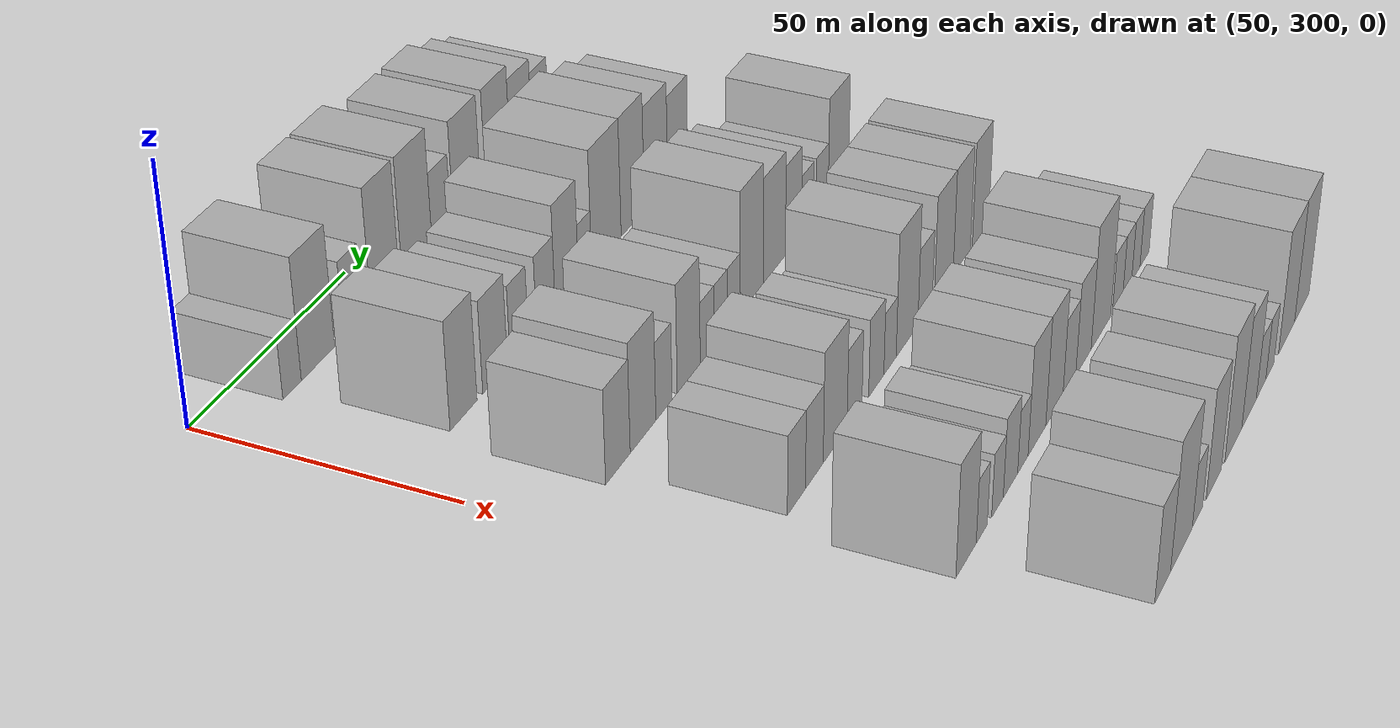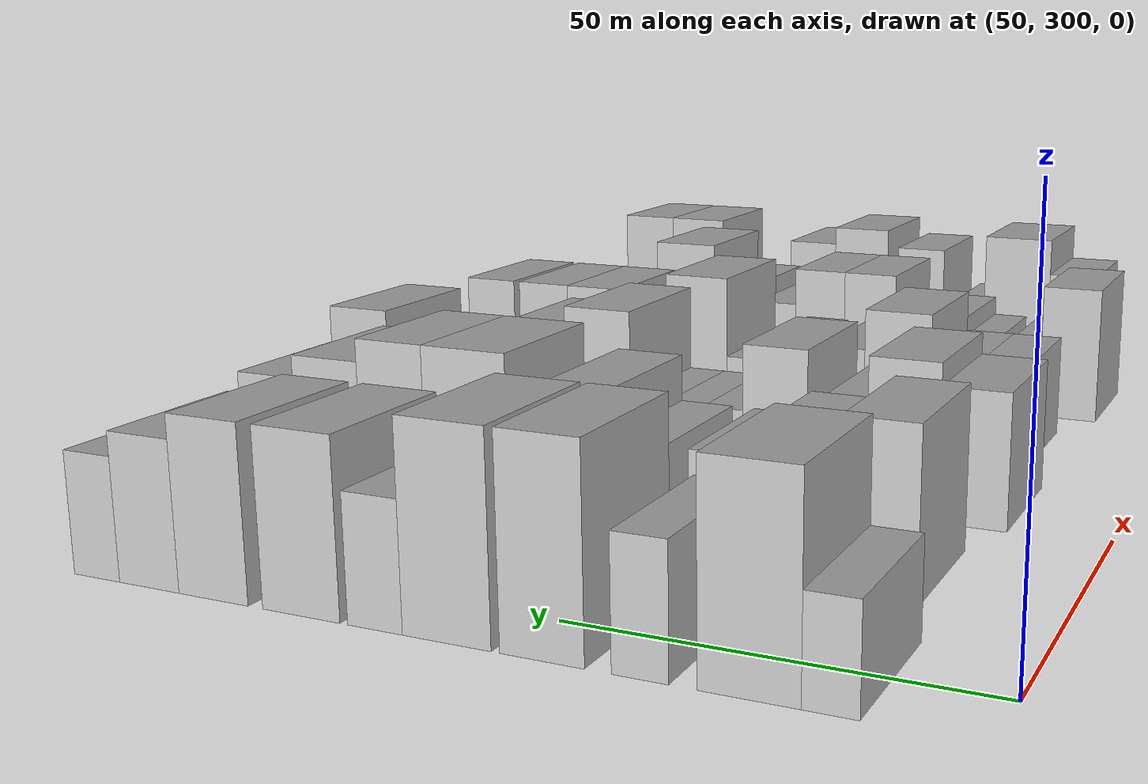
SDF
<sdf version="1.6">
 <world name="default">
  <model name="building_83">
   <static>1</static>
   <pose>50.0000 315.6502 0 0.000000 0.000000 0.000000</pose>
   <link name="link">
    <pose>0 0 6.00 0 0 0</pose>
    <collision name="collision"><geometry><box><size>20.0000 5.8469 12.0000</size></box></geometry></collision>
    <visual name="visual">
     <cast_shadows>0</cast_shadows>
     <geometry><box><size>20.0000 5.8469 12.0000</size></box></geometry>
     <material>
      <script>
       <uri>model://HANNAS_wall/materials/scripts</uri>
       <uri>model://HANNAS_wall/materials/textures</uri>
       <name>vrc/HANNAS_wall</name>
      </script>
     </material>
    </visual>
   </link>
  </model>
  <model name="building_84">
   <static>1</static>
   <pose>50.0000 323.9621 0 0.000000 0.000000 0.000000</pose>
   <link name="link">
    <pose>0 0 12.00 0 0 0</pose>
    <collision name="collision"><geometry><box><size>20.0000 10.7770 24.0000</size></box></geometry></collision>
    <visual name="visual">
     <cast_shadows>0</cast_shadows>
     <geometry><box><size>20.0000 10.7770 24.0000</size></box></geometry>
     <material>
      <script>
       <uri>model://HANNAS_wall/materials/scripts</uri>
       <uri>model://HANNAS_wall/materials/textures</uri>
       <name>vrc/HANNAS_wall</name>
      </script>
     </material>
    </visual>
   </link>
  </model>
  <model name="building_85">
   <static>1</static>
   <pose>50.0000 335.5041 0 0.000000 0.000000 0.000000</pose>
   <link name="link">
    <pose>0 0 7.50 0 0 0</pose>
    <collision name="collision"><geometry><box><size>20.0000 6.3070 15.0000</size></box></geometry></collision>
    <visual name="visual">
     <cast_shadows>0</cast_shadows>
     <geometry><box><size>20.0000 6.3070 15.0000</size></box></geometry>
     <material>
      <script>
       <uri>model://HANNAS_wall/materials/scripts</uri>
       <uri>model://HANNAS_wall/materials/textures</uri>
       <name>vrc/HANNAS_wall</name>
      </script>
     </material>
    </visual>
   </link>
  </model>
  <model name="building_86">
   <static>1</static>
   <pose>50.0000 346.5741 0 0.000000 0.000000 0.000000</pose>
   <link name="link">
    <pose>0 0 12.00 0 0 0</pose>
    <collision name="collision"><geometry><box><size>20.0000 9.8329 24.0000</size></box></geometry></collision>
    <visual name="visual">
     <cast_shadows>0</cast_shadows>
     <geometry><box><size>20.0000 9.8329 24.0000</size></box></geometry>
     <material>
      <script>
       <uri>model://HANNAS_wall/materials/scripts</uri>
       <uri>model://HANNAS_wall/materials/textures</uri>
       <name>vrc/HANNAS_wall</name>
      </script>
     </material>
    </visual>
   </link>
  </model>
  <model name="building_87">
   <static>1</static>
   <pose>50.0000 357.9095 0 0.000000 0.000000 0.000000</pose>
   <link name="link">
    <pose>0 0 12.00 0 0 0</pose>
    <collision name="collision"><geometry><box><size>20.0000 10.8380 24.0000</size></box></geometry></collision>
    <visual name="visual">
     <cast_shadows>0</cast_shadows>
     <geometry><box><size>20.0000 10.8380 24.0000</size></box></geometry>
     <material>
      <script>
       <uri>model://HANNAS_wall/materials/scripts</uri>
       <uri>model://HANNAS_wall/materials/textures</uri>
       <name>vrc/HANNAS_wall</name>
      </script>
     </material>
    </visual>
   </link>
  </model>
  <model name="building_88">
   <static>1</static>
   <pose>50.0000 366.8160 0 0.000000 0.000000 0.000000</pose>
   <link name="link">
    <pose>0 0 7.50 0 0 0</pose>
    <collision name="collision"><geometry><box><size>20.0000 6.9750 15.0000</size></box></geometry></collision>
    <visual name="visual">
     <cast_shadows>0</cast_shadows>
     <geometry><box><size>20.0000 6.9750 15.0000</size></box></geometry>
     <material>
      <script>
       <uri>model://HANNAS_wall/materials/scripts</uri>
       <uri>model://HANNAS_wall/materials/textures</uri>
       <name>vrc/HANNAS_wall</name>
      </script>
     </material>
    </visual>
   </link>
  </model>
  <model name="building_89">
   <static>1</static>
   <pose>50.0000 376.4485 0 0.000000 0.000000 0.000000</pose>
   <link name="link">
    <pose>0 0 10.50 0 0 0</pose>
    <collision name="collision"><geometry><box><size>20.0000 10.2900 21.0000</size></box></geometry></collision>
    <visual name="visual">
     <cast_shadows>0</cast_shadows>
     <geometry><box><size>20.0000 10.2900 21.0000</size></box></geometry>
     <material>
      <script>
       <uri>model://HANNAS_wall/materials/scripts</uri>
       <uri>model://HANNAS_wall/materials/textures</uri>
       <name>vrc/HANNAS_wall</name>
      </script>
     </material>
    </visual>
   </link>
  </model>
  <model name="building_90">
   <static>1</static>
   <pose>50.0000 388.4511 0 0.000000 0.000000 0.000000</pose>
   <link name="link">
    <pose>0 0 10.50 0 0 0</pose>
    <collision name="collision"><geometry><box><size>20.0000 9.7150 21.0000</size></box></geometry></collision>
    <visual name="visual">
     <cast_shadows>0</cast_shadows>
     <geometry><box><size>20.0000 9.7150 21.0000</size></box></geometry>
     <material>
      <script>
       <uri>model://HANNAS_wall/materials/scripts</uri>
       <uri>model://HANNAS_wall/materials/textures</uri>
       <name>vrc/HANNAS_wall</name>
      </script>
     </material>
    </visual>
   </link>
  </model>
  <model name="building_91">
   <static>1</static>
   <pose>50.0000 397.6454 0 0.000000 0.000000 0.000000</pose>
   <link name="link">
    <pose>0 0 9.00 0 0 0</pose>
    <collision name="collision"><geometry><box><size>20.0000 8.6737 18.0000</size></box></geometry></collision>
    <visual name="visual">
     <cast_shadows>0</cast_shadows>
     <geometry><box><size>20.0000 8.6737 18.0000</size></box></geometry>
     <material>
      <script>
       <uri>model://HANNAS_wall/materials/scripts</uri>
       <uri>model://HANNAS_wall/materials/textures</uri>
       <name>vrc/HANNAS_wall</name>
      </script>
     </material>
    </visual>
   </link>
  </model>
  <model name="building_92">
   <static>1</static>
   <pose>50.0000 405.3828 0 0.000000 0.000000 0.000000</pose>
   <link name="link">
    <pose>0 0 7.50 0 0 0</pose>
    <collision name="collision"><geometry><box><size>20.0000 6.8011 15.0000</size></box></geometry></collision>
    <visual name="visual">
     <cast_shadows>0</cast_shadows>
     <geometry><box><size>20.0000 6.8011 15.0000</size></box></geometry>
     <material>
      <script>
       <uri>model://HANNAS_wall/materials/scripts</uri>
       <uri>model://HANNAS_wall/materials/textures</uri>
       <name>vrc/HANNAS_wall</name>
      </script>
     </material>
    </visual>
   </link>
  </model>
  <model name="building_202">
   <static>1</static>
   <pose>79.0000 320.4387 0 0.000000 0.000000 0.000000</pose>
   <link name="link">
    <pose>0 0 10.50 0 0 0</pose>
    <collision name="collision"><geometry><box><size>20.0000 9.2249 21.0000</size></box></geometry></collision>
    <visual name="visual">
     <cast_shadows>0</cast_shadows>
     <geometry><box><size>20.0000 9.2249 21.0000</size></box></geometry>
     <material>
      <script>
       <uri>model://HANNAS_wall/materials/scripts</uri>
       <uri>model://HANNAS_wall/materials/textures</uri>
       <name>vrc/HANNAS_wall</name>
      </script>
     </material>
    </visual>
   </link>
  </model>
  <model name="building_203">
   <static>1</static>
   <pose>79.0000 331.4280 0 0.000000 0.000000 0.000000</pose>
   <link name="link">
    <pose>0 0 9.00 0 0 0</pose>
    <collision name="collision"><geometry><box><size>20.0000 8.7537 18.0000</size></box></geometry></collision>
    <visual name="visual">
     <cast_shadows>0</cast_shadows>
     <geometry><box><size>20.0000 8.7537 18.0000</size></box></geometry>
     <material>
      <script>
       <uri>model://HANNAS_wall/materials/scripts</uri>
       <uri>model://HANNAS_wall/materials/textures</uri>
       <name>vrc/HANNAS_wall</name>
      </script>
     </material>
    </visual>
   </link>
  </model>
  <model name="building_204">
   <static>1</static>
   <pose>79.0000 340.1251 0 0.000000 0.000000 0.000000</pose>
   <link name="link">
    <pose>0 0 7.50 0 0 0</pose>
    <collision name="collision"><geometry><box><size>20.0000 6.6403 15.0000</size></box></geometry></collision>
    <visual name="visual">
     <cast_shadows>0</cast_shadows>
     <geometry><box><size>20.0000 6.6403 15.0000</size></box></geometry>
     <material>
      <script>
       <uri>model://HANNAS_wall/materials/scripts</uri>
       <uri>model://HANNAS_wall/materials/textures</uri>
       <name>vrc/HANNAS_wall</name>
      </script>
     </material>
    </visual>
   </link>
  </model>
  <model name="building_205">
   <static>1</static>
   <pose>79.0000 349.9471 0 0.000000 0.000000 0.000000</pose>
   <link name="link">
    <pose>0 0 7.50 0 0 0</pose>
    <collision name="collision"><geometry><box><size>20.0000 7.0037 15.0000</size></box></geometry></collision>
    <visual name="visual">
     <cast_shadows>0</cast_shadows>
     <geometry><box><size>20.0000 7.0037 15.0000</size></box></geometry>
     <material>
      <script>
       <uri>model://HANNAS_wall/materials/scripts</uri>
       <uri>model://HANNAS_wall/materials/textures</uri>
       <name>vrc/HANNAS_wall</name>
      </script>
     </material>
    </visual>
   </link>
  </model>
  <model name="building_206">
   <static>1</static>
   <pose>79.0000 357.9416 0 0.000000 0.000000 0.000000</pose>
   <link name="link">
    <pose>0 0 10.50 0 0 0</pose>
    <collision name="collision"><geometry><box><size>20.0000 8.9853 21.0000</size></box></geometry></collision>
    <visual name="visual">
     <cast_shadows>0</cast_shadows>
     <geometry><box><size>20.0000 8.9853 21.0000</size></box></geometry>
     <material>
      <script>
       <uri>model://HANNAS_wall/materials/scripts</uri>
       <uri>model://HANNAS_wall/materials/textures</uri>
       <name>vrc/HANNAS_wall</name>
      </script>
     </material>
    </visual>
   </link>
  </model>
  <model name="building_207">
   <static>1</static>
   <pose>79.0000 365.0047 0 0.000000 0.000000 0.000000</pose>
   <link name="link">
    <pose>0 0 6.00 0 0 0</pose>
    <collision name="collision"><geometry><box><size>20.0000 5.1410 12.0000</size></box></geometry></collision>
    <visual name="visual">
     <cast_shadows>0</cast_shadows>
     <geometry><box><size>20.0000 5.1410 12.0000</size></box></geometry>
     <material>
      <script>
       <uri>model://HANNAS_wall/materials/scripts</uri>
       <uri>model://HANNAS_wall/materials/textures</uri>
       <name>vrc/HANNAS_wall</name>
      </script>
     </material>
    </visual>
   </link>
  </model>
  <model name="building_208">
   <static>1</static>
   <pose>79.0000 373.4935 0 0.000000 0.000000 0.000000</pose>
   <link name="link">
    <pose>0 0 12.00 0 0 0</pose>
    <collision name="collision"><geometry><box><size>20.0000 11.8366 24.0000</size></box></geometry></collision>
    <visual name="visual">
     <cast_shadows>0</cast_shadows>
     <geometry><box><size>20.0000 11.8366 24.0000</size></box></geometry>
     <material>
      <script>
       <uri>model://HANNAS_wall/materials/scripts</uri>
       <uri>model://HANNAS_wall/materials/textures</uri>
       <name>vrc/HANNAS_wall</name>
      </script>
     </material>
    </visual>
   </link>
  </model>
  <model name="building_209">
   <static>1</static>
   <pose>79.0000 384.2476 0 0.000000 0.000000 0.000000</pose>
   <link name="link">
    <pose>0 0 12.00 0 0 0</pose>
    <collision name="collision"><geometry><box><size>20.0000 9.6716 24.0000</size></box></geometry></collision>
    <visual name="visual">
     <cast_shadows>0</cast_shadows>
     <geometry><box><size>20.0000 9.6716 24.0000</size></box></geometry>
     <material>
      <script>
       <uri>model://HANNAS_wall/materials/scripts</uri>
       <uri>model://HANNAS_wall/materials/textures</uri>
       <name>vrc/HANNAS_wall</name>
      </script>
     </material>
    </visual>
   </link>
  </model>
  <model name="building_210">
   <static>1</static>
   <pose>79.0000 394.0834 0 0.000000 0.000000 0.000000</pose>
   <link name="link">
    <pose>0 0 10.50 0 0 0</pose>
    <collision name="collision"><geometry><box><size>20.0000 10.0000 21.0000</size></box></geometry></collision>
    <visual name="visual">
     <cast_shadows>0</cast_shadows>
     <geometry><box><size>20.0000 10.0000 21.0000</size></box></geometry>
     <material>
      <script>
       <uri>model://HANNAS_wall/materials/scripts</uri>
       <uri>model://HANNAS_wall/materials/textures</uri>
       <name>vrc/HANNAS_wall</name>
      </script>
     </material>
    </visual>
   </link>
  </model>
  <model name="building_211">
   <static>1</static>
   <pose>79.0000 403.4831 0 0.000000 0.000000 0.000000</pose>
   <link name="link">
    <pose>0 0 9.00 0 0 0</pose>
    <collision name="collision"><geometry><box><size>20.0000 8.7995 18.0000</size></box></geometry></collision>
    <visual name="visual">
     <cast_shadows>0</cast_shadows>
     <geometry><box><size>20.0000 8.7995 18.0000</size></box></geometry>
     <material>
      <script>
       <uri>model://HANNAS_wall/materials/scripts</uri>
       <uri>model://HANNAS_wall/materials/textures</uri>
       <name>vrc/HANNAS_wall</name>
      </script>
     </material>
    </visual>
   </link>
  </model>
  <model name="building_320">
   <static>1</static>
   <pose>108.0000 317.2906 0 0.000000 0.000000 0.000000</pose>
   <link name="link">
    <pose>0 0 9.00 0 0 0</pose>
    <collision name="collision"><geometry><box><size>20.0000 8.9790 18.0000</size></box></geometry></collision>
    <visual name="visual">
     <cast_shadows>0</cast_shadows>
     <geometry><box><size>20.0000 8.9790 18.0000</size></box></geometry>
     <material>
      <script>
       <uri>model://HANNAS_wall/materials/scripts</uri>
       <uri>model://HANNAS_wall/materials/textures</uri>
       <name>vrc/HANNAS_wall</name>
      </script>
     </material>
    </visual>
   </link>
  </model>
  <model name="building_321">
   <static>1</static>
   <pose>108.0000 326.5962 0 0.000000 0.000000 0.000000</pose>
   <link name="link">
    <pose>0 0 10.50 0 0 0</pose>
    <collision name="collision"><geometry><box><size>20.0000 9.6323 21.0000</size></box></geometry></collision>
    <visual name="visual">
     <cast_shadows>0</cast_shadows>
     <geometry><box><size>20.0000 9.6323 21.0000</size></box></geometry>
     <material>
      <script>
       <uri>model://HANNAS_wall/materials/scripts</uri>
       <uri>model://HANNAS_wall/materials/textures</uri>
       <name>vrc/HANNAS_wall</name>
      </script>
     </material>
    </visual>
   </link>
  </model>
  <model name="building_322">
   <static>1</static>
   <pose>108.0000 334.5359 0 0.000000 0.000000 0.000000</pose>
   <link name="link">
    <pose>0 0 7.50 0 0 0</pose>
    <collision name="collision"><geometry><box><size>20.0000 6.2470 15.0000</size></box></geometry></collision>
    <visual name="visual">
     <cast_shadows>0</cast_shadows>
     <geometry><box><size>20.0000 6.2470 15.0000</size></box></geometry>
     <material>
      <script>
       <uri>model://HANNAS_wall/materials/scripts</uri>
       <uri>model://HANNAS_wall/materials/textures</uri>
       <name>vrc/HANNAS_wall</name>
      </script>
     </material>
    </visual>
   </link>
  </model>
  <model name="building_323">
   <static>1</static>
   <pose>108.0000 344.2405 0 0.000000 0.000000 0.000000</pose>
   <link name="link">
    <pose>0 0 10.50 0 0 0</pose>
    <collision name="collision"><geometry><box><size>20.0000 9.1622 21.0000</size></box></geometry></collision>
    <visual name="visual">
     <cast_shadows>0</cast_shadows>
     <geometry><box><size>20.0000 9.1622 21.0000</size></box></geometry>
     <material>
      <script>
       <uri>model://HANNAS_wall/materials/scripts</uri>
       <uri>model://HANNAS_wall/materials/textures</uri>
       <name>vrc/HANNAS_wall</name>
      </script>
     </material>
    </visual>
   </link>
  </model>
  <model name="building_324">
   <static>1</static>
   <pose>108.0000 351.6657 0 0.000000 0.000000 0.000000</pose>
   <link name="link">
    <pose>0 0 6.00 0 0 0</pose>
    <collision name="collision"><geometry><box><size>20.0000 5.6881 12.0000</size></box></geometry></collision>
    <visual name="visual">
     <cast_shadows>0</cast_shadows>
     <geometry><box><size>20.0000 5.6881 12.0000</size></box></geometry>
     <material>
      <script>
       <uri>model://HANNAS_wall/materials/scripts</uri>
       <uri>model://HANNAS_wall/materials/textures</uri>
       <name>vrc/HANNAS_wall</name>
      </script>
     </material>
    </visual>
   </link>
  </model>
  <model name="building_325">
   <static>1</static>
   <pose>108.0000 357.2483 0 0.000000 0.000000 0.000000</pose>
   <link name="link">
    <pose>0 0 6.00 0 0 0</pose>
    <collision name="collision"><geometry><box><size>20.0000 5.4771 12.0000</size></box></geometry></collision>
    <visual name="visual">
     <cast_shadows>0</cast_shadows>
     <geometry><box><size>20.0000 5.4771 12.0000</size></box></geometry>
     <material>
      <script>
       <uri>model://HANNAS_wall/materials/scripts</uri>
       <uri>model://HANNAS_wall/materials/textures</uri>
       <name>vrc/HANNAS_wall</name>
      </script>
     </material>
    </visual>
   </link>
  </model>
  <model name="building_326">
   <static>1</static>
   <pose>108.0000 362.7134 0 0.000000 0.000000 0.000000</pose>
   <link name="link">
    <pose>0 0 6.00 0 0 0</pose>
    <collision name="collision"><geometry><box><size>20.0000 5.4531 12.0000</size></box></geometry></collision>
    <visual name="visual">
     <cast_shadows>0</cast_shadows>
     <geometry><box><size>20.0000 5.4531 12.0000</size></box></geometry>
     <material>
      <script>
       <uri>model://HANNAS_wall/materials/scripts</uri>
       <uri>model://HANNAS_wall/materials/textures</uri>
       <name>vrc/HANNAS_wall</name>
      </script>
     </material>
    </visual>
   </link>
  </model>
  <model name="building_327">
   <static>1</static>
   <pose>108.0000 370.4327 0 0.000000 0.000000 0.000000</pose>
   <link name="link">
    <pose>0 0 12.00 0 0 0</pose>
    <collision name="collision"><geometry><box><size>20.0000 9.9855 24.0000</size></box></geometry></collision>
    <visual name="visual">
     <cast_shadows>0</cast_shadows>
     <geometry><box><size>20.0000 9.9855 24.0000</size></box></geometry>
     <material>
      <script>
       <uri>model://HANNAS_wall/materials/scripts</uri>
       <uri>model://HANNAS_wall/materials/textures</uri>
       <name>vrc/HANNAS_wall</name>
      </script>
     </material>
    </visual>
   </link>
  </model>
  <model name="building_328">
   <static>1</static>
   <pose>108.0000 380.2933 0 0.000000 0.000000 0.000000</pose>
   <link name="link">
    <pose>0 0 10.50 0 0 0</pose>
    <collision name="collision"><geometry><box><size>20.0000 9.7358 21.0000</size></box></geometry></collision>
    <visual name="visual">
     <cast_shadows>0</cast_shadows>
     <geometry><box><size>20.0000 9.7358 21.0000</size></box></geometry>
     <material>
      <script>
       <uri>model://HANNAS_wall/materials/scripts</uri>
       <uri>model://HANNAS_wall/materials/textures</uri>
       <name>vrc/HANNAS_wall</name>
      </script>
     </material>
    </visual>
   </link>
  </model>
  <model name="building_329">
   <static>1</static>
   <pose>108.0000 388.8684 0 0.000000 0.000000 0.000000</pose>
   <link name="link">
    <pose>0 0 9.00 0 0 0</pose>
    <collision name="collision"><geometry><box><size>20.0000 7.4144 18.0000</size></box></geometry></collision>
    <visual name="visual">
     <cast_shadows>0</cast_shadows>
     <geometry><box><size>20.0000 7.4144 18.0000</size></box></geometry>
     <material>
      <script>
       <uri>model://HANNAS_wall/materials/scripts</uri>
       <uri>model://HANNAS_wall/materials/textures</uri>
       <name>vrc/HANNAS_wall</name>
      </script>
     </material>
    </visual>
   </link>
  </model>
  <model name="building_330">
   <static>1</static>
   <pose>108.0000 395.3501 0 0.000000 0.000000 0.000000</pose>
   <link name="link">
    <pose>0 0 6.00 0 0 0</pose>
    <collision name="collision"><geometry><box><size>20.0000 5.5489 12.0000</size></box></geometry></collision>
    <visual name="visual">
     <cast_shadows>0</cast_shadows>
     <geometry><box><size>20.0000 5.5489 12.0000</size></box></geometry>
     <material>
      <script>
       <uri>model://HANNAS_wall/materials/scripts</uri>
       <uri>model://HANNAS_wall/materials/textures</uri>
       <name>vrc/HANNAS_wall</name>
      </script>
     </material>
    </visual>
   </link>
  </model>
  <model name="building_331">
   <static>1</static>
   <pose>108.0000 402.0646 0 0.000000 0.000000 0.000000</pose>
   <link name="link">
    <pose>0 0 6.00 0 0 0</pose>
    <collision name="collision"><geometry><box><size>20.0000 5.8802 12.0000</size></box></geometry></collision>
    <visual name="visual">
     <cast_shadows>0</cast_shadows>
     <geometry><box><size>20.0000 5.8802 12.0000</size></box></geometry>
     <material>
      <script>
       <uri>model://HANNAS_wall/materials/scripts</uri>
       <uri>model://HANNAS_wall/materials/textures</uri>
       <name>vrc/HANNAS_wall</name>
      </script>
     </material>
    </visual>
   </link>
  </model>
  <model name="building_332">
   <static>1</static>
   <pose>108.0000 409.9269 0 0.000000 0.000000 0.000000</pose>
   <link name="link">
    <pose>0 0 10.50 0 0 0</pose>
    <collision name="collision"><geometry><box><size>20.0000 9.8443 21.0000</size></box></geometry></collision>
    <visual name="visual">
     <cast_shadows>0</cast_shadows>
     <geometry><box><size>20.0000 9.8443 21.0000</size></box></geometry>
     <material>
      <script>
       <uri>model://HANNAS_wall/materials/scripts</uri>
       <uri>model://HANNAS_wall/materials/textures</uri>
       <name>vrc/HANNAS_wall</name>
      </script>
     </material>
    </visual>
   </link>
  </model>
  <model name="building_439">
   <static>1</static>
   <pose>137.0000 320.4388 0 0.000000 0.000000 0.000000</pose>
   <link name="link">
    <pose>0 0 7.50 0 0 0</pose>
    <collision name="collision"><geometry><box><size>20.0000 7.2832 15.0000</size></box></geometry></collision>
    <visual name="visual">
     <cast_shadows>0</cast_shadows>
     <geometry><box><size>20.0000 7.2832 15.0000</size></box></geometry>
     <material>
      <script>
       <uri>model://HANNAS_wall/materials/scripts</uri>
       <uri>model://HANNAS_wall/materials/textures</uri>
       <name>vrc/HANNAS_wall</name>
      </script>
     </material>
    </visual>
   </link>
  </model>
  <model name="building_440">
   <static>1</static>
   <pose>137.0000 327.7429 0 0.000000 0.000000 0.000000</pose>
   <link name="link">
    <pose>0 0 7.50 0 0 0</pose>
    <collision name="collision"><geometry><box><size>20.0000 7.3248 15.0000</size></box></geometry></collision>
    <visual name="visual">
     <cast_shadows>0</cast_shadows>
     <geometry><box><size>20.0000 7.3248 15.0000</size></box></geometry>
     <material>
      <script>
       <uri>model://HANNAS_wall/materials/scripts</uri>
       <uri>model://HANNAS_wall/materials/textures</uri>
       <name>vrc/HANNAS_wall</name>
      </script>
     </material>
    </visual>
   </link>
  </model>
  <model name="building_441">
   <static>1</static>
   <pose>137.0000 336.4308 0 0.000000 0.000000 0.000000</pose>
   <link name="link">
    <pose>0 0 10.50 0 0 0</pose>
    <collision name="collision"><geometry><box><size>20.0000 10.0510 21.0000</size></box></geometry></collision>
    <visual name="visual">
     <cast_shadows>0</cast_shadows>
     <geometry><box><size>20.0000 10.0510 21.0000</size></box></geometry>
     <material>
      <script>
       <uri>model://HANNAS_wall/materials/scripts</uri>
       <uri>model://HANNAS_wall/materials/textures</uri>
       <name>vrc/HANNAS_wall</name>
      </script>
     </material>
    </visual>
   </link>
  </model>
  <model name="building_442">
   <static>1</static>
   <pose>137.0000 344.7124 0 0.000000 0.000000 0.000000</pose>
   <link name="link">
    <pose>0 0 7.50 0 0 0</pose>
    <collision name="collision"><geometry><box><size>20.0000 6.5121 15.0000</size></box></geometry></collision>
    <visual name="visual">
     <cast_shadows>0</cast_shadows>
     <geometry><box><size>20.0000 6.5121 15.0000</size></box></geometry>
     <material>
      <script>
       <uri>model://HANNAS_wall/materials/scripts</uri>
       <uri>model://HANNAS_wall/materials/textures</uri>
       <name>vrc/HANNAS_wall</name>
      </script>
     </material>
    </visual>
   </link>
  </model>
  <model name="building_443">
   <static>1</static>
   <pose>137.0000 354.3836 0 0.000000 0.000000 0.000000</pose>
   <link name="link">
    <pose>0 0 7.50 0 0 0</pose>
    <collision name="collision"><geometry><box><size>20.0000 6.8304 15.0000</size></box></geometry></collision>
    <visual name="visual">
     <cast_shadows>0</cast_shadows>
     <geometry><box><size>20.0000 6.8304 15.0000</size></box></geometry>
     <material>
      <script>
       <uri>model://HANNAS_wall/materials/scripts</uri>
       <uri>model://HANNAS_wall/materials/textures</uri>
       <name>vrc/HANNAS_wall</name>
      </script>
     </material>
    </visual>
   </link>
  </model>
  <model name="building_444">
   <static>1</static>
   <pose>137.0000 360.6201 0 0.000000 0.000000 0.000000</pose>
   <link name="link">
    <pose>0 0 6.00 0 0 0</pose>
    <collision name="collision"><geometry><box><size>20.0000 5.6424 12.0000</size></box></geometry></collision>
    <visual name="visual">
     <cast_shadows>0</cast_shadows>
     <geometry><box><size>20.0000 5.6424 12.0000</size></box></geometry>
     <material>
      <script>
       <uri>model://HANNAS_wall/materials/scripts</uri>
       <uri>model://HANNAS_wall/materials/textures</uri>
       <name>vrc/HANNAS_wall</name>
      </script>
     </material>
    </visual>
   </link>
  </model>
  <model name="building_445">
   <static>1</static>
   <pose>137.0000 368.5423 0 0.000000 0.000000 0.000000</pose>
   <link name="link">
    <pose>0 0 12.00 0 0 0</pose>
    <collision name="collision"><geometry><box><size>20.0000 10.2020 24.0000</size></box></geometry></collision>
    <visual name="visual">
     <cast_shadows>0</cast_shadows>
     <geometry><box><size>20.0000 10.2020 24.0000</size></box></geometry>
     <material>
      <script>
       <uri>model://HANNAS_wall/materials/scripts</uri>
       <uri>model://HANNAS_wall/materials/textures</uri>
       <name>vrc/HANNAS_wall</name>
      </script>
     </material>
    </visual>
   </link>
  </model>
  <model name="building_446">
   <static>1</static>
   <pose>137.0000 377.0832 0 0.000000 0.000000 0.000000</pose>
   <link name="link">
    <pose>0 0 7.50 0 0 0</pose>
    <collision name="collision"><geometry><box><size>20.0000 6.8797 15.0000</size></box></geometry></collision>
    <visual name="visual">
     <cast_shadows>0</cast_shadows>
     <geometry><box><size>20.0000 6.8797 15.0000</size></box></geometry>
     <material>
      <script>
       <uri>model://HANNAS_wall/materials/scripts</uri>
       <uri>model://HANNAS_wall/materials/textures</uri>
       <name>vrc/HANNAS_wall</name>
      </script>
     </material>
    </visual>
   </link>
  </model>
  <model name="building_447">
   <static>1</static>
   <pose>137.0000 386.2371 0 0.000000 0.000000 0.000000</pose>
   <link name="link">
    <pose>0 0 10.50 0 0 0</pose>
    <collision name="collision"><geometry><box><size>20.0000 9.4281 21.0000</size></box></geometry></collision>
    <visual name="visual">
     <cast_shadows>0</cast_shadows>
     <geometry><box><size>20.0000 9.4281 21.0000</size></box></geometry>
     <material>
      <script>
       <uri>model://HANNAS_wall/materials/scripts</uri>
       <uri>model://HANNAS_wall/materials/textures</uri>
       <name>vrc/HANNAS_wall</name>
      </script>
     </material>
    </visual>
   </link>
  </model>
  <model name="building_448">
   <static>1</static>
   <pose>137.0000 395.3229 0 0.000000 0.000000 0.000000</pose>
   <link name="link">
    <pose>0 0 10.50 0 0 0</pose>
    <collision name="collision"><geometry><box><size>20.0000 8.7435 21.0000</size></box></geometry></collision>
    <visual name="visual">
     <cast_shadows>0</cast_shadows>
     <geometry><box><size>20.0000 8.7435 21.0000</size></box></geometry>
     <material>
      <script>
       <uri>model://HANNAS_wall/materials/scripts</uri>
       <uri>model://HANNAS_wall/materials/textures</uri>
       <name>vrc/HANNAS_wall</name>
      </script>
     </material>
    </visual>
   </link>
  </model>
  <model name="building_449">
   <static>1</static>
   <pose>137.0000 404.9812 0 0.000000 0.000000 0.000000</pose>
   <link name="link">
    <pose>0 0 10.50 0 0 0</pose>
    <collision name="collision"><geometry><box><size>20.0000 8.5729 21.0000</size></box></geometry></collision>
    <visual name="visual">
     <cast_shadows>0</cast_shadows>
     <geometry><box><size>20.0000 8.5729 21.0000</size></box></geometry>
     <material>
      <script>
       <uri>model://HANNAS_wall/materials/scripts</uri>
       <uri>model://HANNAS_wall/materials/textures</uri>
       <name>vrc/HANNAS_wall</name>
      </script>
     </material>
    </visual>
   </link>
  </model>
  <model name="building_553">
   <static>1</static>
   <pose>166.0000 317.0886 0 0.000000 0.000000 0.000000</pose>
   <link name="link">
    <pose>0 0 10.50 0 0 0</pose>
    <collision name="collision"><geometry><box><size>20.0000 9.0157 21.0000</size></box></geometry></collision>
    <visual name="visual">
     <cast_shadows>0</cast_shadows>
     <geometry><box><size>20.0000 9.0157 21.0000</size></box></geometry>
     <material>
      <script>
       <uri>model://HANNAS_wall/materials/scripts</uri>
       <uri>model://HANNAS_wall/materials/textures</uri>
       <name>vrc/HANNAS_wall</name>
      </script>
     </material>
    </visual>
   </link>
  </model>
  <model name="building_554">
   <static>1</static>
   <pose>166.0000 324.1011 0 0.000000 0.000000 0.000000</pose>
   <link name="link">
    <pose>0 0 6.00 0 0 0</pose>
    <collision name="collision"><geometry><box><size>20.0000 5.0092 12.0000</size></box></geometry></collision>
    <visual name="visual">
     <cast_shadows>0</cast_shadows>
     <geometry><box><size>20.0000 5.0092 12.0000</size></box></geometry>
     <material>
      <script>
       <uri>model://HANNAS_wall/materials/scripts</uri>
       <uri>model://HANNAS_wall/materials/textures</uri>
       <name>vrc/HANNAS_wall</name>
      </script>
     </material>
    </visual>
   </link>
  </model>
  <model name="building_555">
   <static>1</static>
   <pose>166.0000 331.3011 0 0.000000 0.000000 0.000000</pose>
   <link name="link">
    <pose>0 0 6.00 0 0 0</pose>
    <collision name="collision"><geometry><box><size>20.0000 5.3907 12.0000</size></box></geometry></collision>
    <visual name="visual">
     <cast_shadows>0</cast_shadows>
     <geometry><box><size>20.0000 5.3907 12.0000</size></box></geometry>
     <material>
      <script>
       <uri>model://HANNAS_wall/materials/scripts</uri>
       <uri>model://HANNAS_wall/materials/textures</uri>
       <name>vrc/HANNAS_wall</name>
      </script>
     </material>
    </visual>
   </link>
  </model>
  <model name="building_556">
   <static>1</static>
   <pose>166.0000 337.4122 0 0.000000 0.000000 0.000000</pose>
   <link name="link">
    <pose>0 0 7.50 0 0 0</pose>
    <collision name="collision"><geometry><box><size>20.0000 6.8315 15.0000</size></box></geometry></collision>
    <visual name="visual">
     <cast_shadows>0</cast_shadows>
     <geometry><box><size>20.0000 6.8315 15.0000</size></box></geometry>
     <material>
      <script>
       <uri>model://HANNAS_wall/materials/scripts</uri>
       <uri>model://HANNAS_wall/materials/textures</uri>
       <name>vrc/HANNAS_wall</name>
      </script>
     </material>
    </visual>
   </link>
  </model>
  <model name="building_557">
   <static>1</static>
   <pose>166.0000 343.3449 0 0.000000 0.000000 0.000000</pose>
   <link name="link">
    <pose>0 0 6.00 0 0 0</pose>
    <collision name="collision"><geometry><box><size>20.0000 5.0339 12.0000</size></box></geometry></collision>
    <visual name="visual">
     <cast_shadows>0</cast_shadows>
     <geometry><box><size>20.0000 5.0339 12.0000</size></box></geometry>
     <material>
      <script>
       <uri>model://HANNAS_wall/materials/scripts</uri>
       <uri>model://HANNAS_wall/materials/textures</uri>
       <name>vrc/HANNAS_wall</name>
      </script>
     </material>
    </visual>
   </link>
  </model>
  <model name="building_558">
   <static>1</static>
   <pose>166.0000 350.2475 0 0.000000 0.000000 0.000000</pose>
   <link name="link">
    <pose>0 0 10.50 0 0 0</pose>
    <collision name="collision"><geometry><box><size>20.0000 8.7713 21.0000</size></box></geometry></collision>
    <visual name="visual">
     <cast_shadows>0</cast_shadows>
     <geometry><box><size>20.0000 8.7713 21.0000</size></box></geometry>
     <material>
      <script>
       <uri>model://HANNAS_wall/materials/scripts</uri>
       <uri>model://HANNAS_wall/materials/textures</uri>
       <name>vrc/HANNAS_wall</name>
      </script>
     </material>
    </visual>
   </link>
  </model>
  <model name="building_559">
   <static>1</static>
   <pose>166.0000 358.9785 0 0.000000 0.000000 0.000000</pose>
   <link name="link">
    <pose>0 0 10.50 0 0 0</pose>
    <collision name="collision"><geometry><box><size>20.0000 8.6906 21.0000</size></box></geometry></collision>
    <visual name="visual">
     <cast_shadows>0</cast_shadows>
     <geometry><box><size>20.0000 8.6906 21.0000</size></box></geometry>
     <material>
      <script>
       <uri>model://HANNAS_wall/materials/scripts</uri>
       <uri>model://HANNAS_wall/materials/textures</uri>
       <name>vrc/HANNAS_wall</name>
      </script>
     </material>
    </visual>
   </link>
  </model>
  <model name="building_560">
   <static>1</static>
   <pose>166.0000 366.6926 0 0.000000 0.000000 0.000000</pose>
   <link name="link">
    <pose>0 0 7.50 0 0 0</pose>
    <collision name="collision"><geometry><box><size>20.0000 6.7378 15.0000</size></box></geometry></collision>
    <visual name="visual">
     <cast_shadows>0</cast_shadows>
     <geometry><box><size>20.0000 6.7378 15.0000</size></box></geometry>
     <material>
      <script>
       <uri>model://HANNAS_wall/materials/scripts</uri>
       <uri>model://HANNAS_wall/materials/textures</uri>
       <name>vrc/HANNAS_wall</name>
      </script>
     </material>
    </visual>
   </link>
  </model>
  <model name="building_561">
   <static>1</static>
   <pose>166.0000 374.1773 0 0.000000 0.000000 0.000000</pose>
   <link name="link">
    <pose>0 0 9.00 0 0 0</pose>
    <collision name="collision"><geometry><box><size>20.0000 8.2315 18.0000</size></box></geometry></collision>
    <visual name="visual">
     <cast_shadows>0</cast_shadows>
     <geometry><box><size>20.0000 8.2315 18.0000</size></box></geometry>
     <material>
      <script>
       <uri>model://HANNAS_wall/materials/scripts</uri>
       <uri>model://HANNAS_wall/materials/textures</uri>
       <name>vrc/HANNAS_wall</name>
      </script>
     </material>
    </visual>
   </link>
  </model>
  <model name="building_562">
   <static>1</static>
   <pose>166.0000 383.6687 0 0.000000 0.000000 0.000000</pose>
   <link name="link">
    <pose>0 0 12.00 0 0 0</pose>
    <collision name="collision"><geometry><box><size>20.0000 10.7513 24.0000</size></box></geometry></collision>
    <visual name="visual">
     <cast_shadows>0</cast_shadows>
     <geometry><box><size>20.0000 10.7513 24.0000</size></box></geometry>
     <material>
      <script>
       <uri>model://HANNAS_wall/materials/scripts</uri>
       <uri>model://HANNAS_wall/materials/textures</uri>
       <name>vrc/HANNAS_wall</name>
      </script>
     </material>
    </visual>
   </link>
  </model>
  <model name="building_563">
   <static>1</static>
   <pose>166.0000 392.9902 0 0.000000 0.000000 0.000000</pose>
   <link name="link">
    <pose>0 0 6.00 0 0 0</pose>
    <collision name="collision"><geometry><box><size>20.0000 5.8916 12.0000</size></box></geometry></collision>
    <visual name="visual">
     <cast_shadows>0</cast_shadows>
     <geometry><box><size>20.0000 5.8916 12.0000</size></box></geometry>
     <material>
      <script>
       <uri>model://HANNAS_wall/materials/scripts</uri>
       <uri>model://HANNAS_wall/materials/textures</uri>
       <name>vrc/HANNAS_wall</name>
      </script>
     </material>
    </visual>
   </link>
  </model>
  <model name="building_564">
   <static>1</static>
   <pose>166.0000 398.4656 0 0.000000 0.000000 0.000000</pose>
   <link name="link">
    <pose>0 0 6.00 0 0 0</pose>
    <collision name="collision"><geometry><box><size>20.0000 5.0592 12.0000</size></box></geometry></collision>
    <visual name="visual">
     <cast_shadows>0</cast_shadows>
     <geometry><box><size>20.0000 5.0592 12.0000</size></box></geometry>
     <material>
      <script>
       <uri>model://HANNAS_wall/materials/scripts</uri>
       <uri>model://HANNAS_wall/materials/textures</uri>
       <name>vrc/HANNAS_wall</name>
      </script>
     </material>
    </visual>
   </link>
  </model>
  <model name="building_565">
   <static>1</static>
   <pose>166.0000 403.4288 0 0.000000 0.000000 0.000000</pose>
   <link name="link">
    <pose>0 0 6.00 0 0 0</pose>
    <collision name="collision"><geometry><box><size>20.0000 4.8671 12.0000</size></box></geometry></collision>
    <visual name="visual">
     <cast_shadows>0</cast_shadows>
     <geometry><box><size>20.0000 4.8671 12.0000</size></box></geometry>
     <material>
      <script>
       <uri>model://HANNAS_wall/materials/scripts</uri>
       <uri>model://HANNAS_wall/materials/textures</uri>
       <name>vrc/HANNAS_wall</name>
      </script>
     </material>
    </visual>
   </link>
  </model>
  <model name="building_566">
   <static>1</static>
   <pose>166.0000 408.5767 0 0.000000 0.000000 0.000000</pose>
   <link name="link">
    <pose>0 0 6.00 0 0 0</pose>
    <collision name="collision"><geometry><box><size>20.0000 5.4287 12.0000</size></box></geometry></collision>
    <visual name="visual">
     <cast_shadows>0</cast_shadows>
     <geometry><box><size>20.0000 5.4287 12.0000</size></box></geometry>
     <material>
      <script>
       <uri>model://HANNAS_wall/materials/scripts</uri>
       <uri>model://HANNAS_wall/materials/textures</uri>
       <name>vrc/HANNAS_wall</name>
      </script>
     </material>
    </visual>
   </link>
  </model>
  <model name="building_660">
   <static>1</static>
   <pose>195.0000 322.5580 0 0.000000 0.000000 0.000000</pose>
   <link name="link">
    <pose>0 0 9.00 0 0 0</pose>
    <collision name="collision"><geometry><box><size>20.0000 8.2073 18.0000</size></box></geometry></collision>
    <visual name="visual">
     <cast_shadows>0</cast_shadows>
     <geometry><box><size>20.0000 8.2073 18.0000</size></box></geometry>
     <material>
      <script>
       <uri>model://HANNAS_wall/materials/scripts</uri>
       <uri>model://HANNAS_wall/materials/textures</uri>
       <name>vrc/HANNAS_wall</name>
      </script>
     </material>
    </visual>
   </link>
  </model>
  <model name="building_661">
   <static>1</static>
   <pose>195.0000 332.4455 0 0.000000 0.000000 0.000000</pose>
   <link name="link">
    <pose>0 0 12.00 0 0 0</pose>
    <collision name="collision"><geometry><box><size>20.0000 11.5679 24.0000</size></box></geometry></collision>
    <visual name="visual">
     <cast_shadows>0</cast_shadows>
     <geometry><box><size>20.0000 11.5679 24.0000</size></box></geometry>
     <material>
      <script>
       <uri>model://HANNAS_wall/materials/scripts</uri>
       <uri>model://HANNAS_wall/materials/textures</uri>
       <name>vrc/HANNAS_wall</name>
      </script>
     </material>
    </visual>
   </link>
  </model>
  <model name="building_662">
   <static>1</static>
   <pose>195.0000 341.0282 0 0.000000 0.000000 0.000000</pose>
   <link name="link">
    <pose>0 0 6.00 0 0 0</pose>
    <collision name="collision"><geometry><box><size>20.0000 5.5974 12.0000</size></box></geometry></collision>
    <visual name="visual">
     <cast_shadows>0</cast_shadows>
     <geometry><box><size>20.0000 5.5974 12.0000</size></box></geometry>
     <material>
      <script>
       <uri>model://HANNAS_wall/materials/scripts</uri>
       <uri>model://HANNAS_wall/materials/textures</uri>
       <name>vrc/HANNAS_wall</name>
      </script>
     </material>
    </visual>
   </link>
  </model>
  <model name="building_663">
   <static>1</static>
   <pose>195.0000 350.1207 0 0.000000 0.000000 0.000000</pose>
   <link name="link">
    <pose>0 0 10.50 0 0 0</pose>
    <collision name="collision"><geometry><box><size>20.0000 8.5876 21.0000</size></box></geometry></collision>
    <visual name="visual">
     <cast_shadows>0</cast_shadows>
     <geometry><box><size>20.0000 8.5876 21.0000</size></box></geometry>
     <material>
      <script>
       <uri>model://HANNAS_wall/materials/scripts</uri>
       <uri>model://HANNAS_wall/materials/textures</uri>
       <name>vrc/HANNAS_wall</name>
      </script>
     </material>
    </visual>
   </link>
  </model>
  <model name="building_664">
   <static>1</static>
   <pose>195.0000 361.4498 0 0.000000 0.000000 0.000000</pose>
   <link name="link">
    <pose>0 0 12.00 0 0 0</pose>
    <collision name="collision"><geometry><box><size>20.0000 10.0706 24.0000</size></box></geometry></collision>
    <visual name="visual">
     <cast_shadows>0</cast_shadows>
     <geometry><box><size>20.0000 10.0706 24.0000</size></box></geometry>
     <material>
      <script>
       <uri>model://HANNAS_wall/materials/scripts</uri>
       <uri>model://HANNAS_wall/materials/textures</uri>
       <name>vrc/HANNAS_wall</name>
      </script>
     </material>
    </visual>
   </link>
  </model>
  <model name="building_665">
   <static>1</static>
   <pose>195.0000 370.8673 0 0.000000 0.000000 0.000000</pose>
   <link name="link">
    <pose>0 0 10.50 0 0 0</pose>
    <collision name="collision"><geometry><box><size>20.0000 8.7644 21.0000</size></box></geometry></collision>
    <visual name="visual">
     <cast_shadows>0</cast_shadows>
     <geometry><box><size>20.0000 8.7644 21.0000</size></box></geometry>
     <material>
      <script>
       <uri>model://HANNAS_wall/materials/scripts</uri>
       <uri>model://HANNAS_wall/materials/textures</uri>
       <name>vrc/HANNAS_wall</name>
      </script>
     </material>
    </visual>
   </link>
  </model>
  <model name="building_666">
   <static>1</static>
   <pose>195.0000 378.1793 0 0.000000 0.000000 0.000000</pose>
   <link name="link">
    <pose>0 0 6.00 0 0 0</pose>
    <collision name="collision"><geometry><box><size>20.0000 5.8595 12.0000</size></box></geometry></collision>
    <visual name="visual">
     <cast_shadows>0</cast_shadows>
     <geometry><box><size>20.0000 5.8595 12.0000</size></box></geometry>
     <material>
      <script>
       <uri>model://HANNAS_wall/materials/scripts</uri>
       <uri>model://HANNAS_wall/materials/textures</uri>
       <name>vrc/HANNAS_wall</name>
      </script>
     </material>
    </visual>
   </link>
  </model>
  <model name="building_667">
   <static>1</static>
   <pose>195.0000 383.6158 0 0.000000 0.000000 0.000000</pose>
   <link name="link">
    <pose>0 0 6.00 0 0 0</pose>
    <collision name="collision"><geometry><box><size>20.0000 5.0136 12.0000</size></box></geometry></collision>
    <visual name="visual">
     <cast_shadows>0</cast_shadows>
     <geometry><box><size>20.0000 5.0136 12.0000</size></box></geometry>
     <material>
      <script>
       <uri>model://HANNAS_wall/materials/scripts</uri>
       <uri>model://HANNAS_wall/materials/textures</uri>
       <name>vrc/HANNAS_wall</name>
      </script>
     </material>
    </visual>
   </link>
  </model>
  <model name="building_668">
   <static>1</static>
   <pose>195.0000 394.3994 0 0.000000 0.000000 0.000000</pose>
   <link name="link">
    <pose>0 0 12.00 0 0 0</pose>
    <collision name="collision"><geometry><box><size>20.0000 10.5536 24.0000</size></box></geometry></collision>
    <visual name="visual">
     <cast_shadows>0</cast_shadows>
     <geometry><box><size>20.0000 10.5536 24.0000</size></box></geometry>
     <material>
      <script>
       <uri>model://HANNAS_wall/materials/scripts</uri>
       <uri>model://HANNAS_wall/materials/textures</uri>
       <name>vrc/HANNAS_wall</name>
      </script>
     </material>
    </visual>
   </link>
  </model>
  <model name="building_669">
   <static>1</static>
   <pose>195.0000 404.5771 0 0.000000 0.000000 0.000000</pose>
   <link name="link">
    <pose>0 0 12.00 0 0 0</pose>
    <collision name="collision"><geometry><box><size>20.0000 9.8017 24.0000</size></box></geometry></collision>
    <visual name="visual">
     <cast_shadows>0</cast_shadows>
     <geometry><box><size>20.0000 9.8017 24.0000</size></box></geometry>
     <material>
      <script>
       <uri>model://HANNAS_wall/materials/scripts</uri>
       <uri>model://HANNAS_wall/materials/textures</uri>
       <name>vrc/HANNAS_wall</name>
      </script>
     </material>
    </visual>
   </link>
  </model>
 </world>
</sdf>
